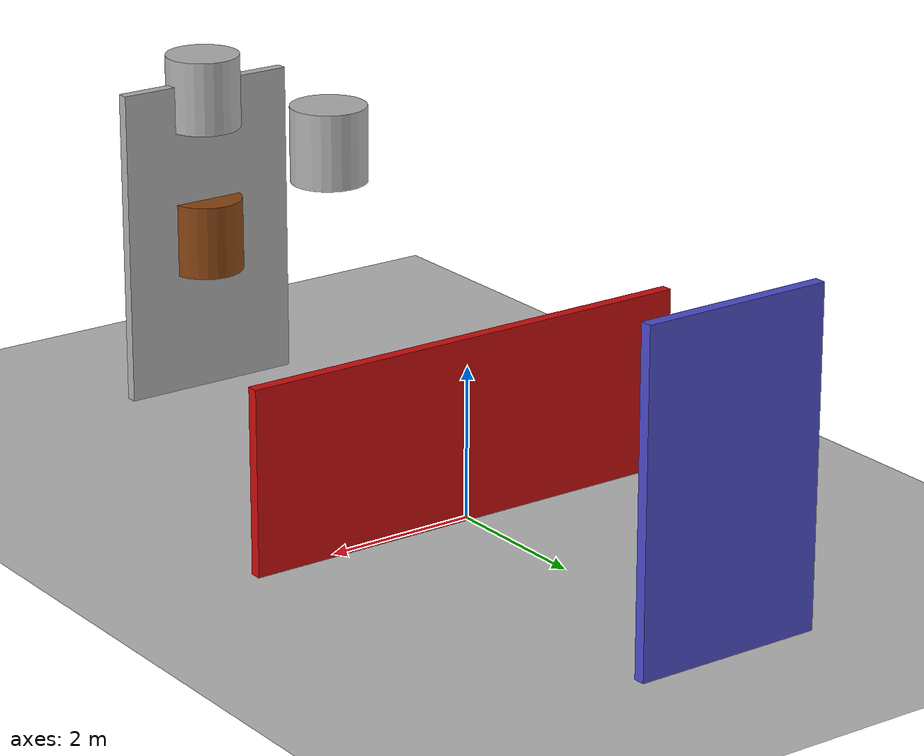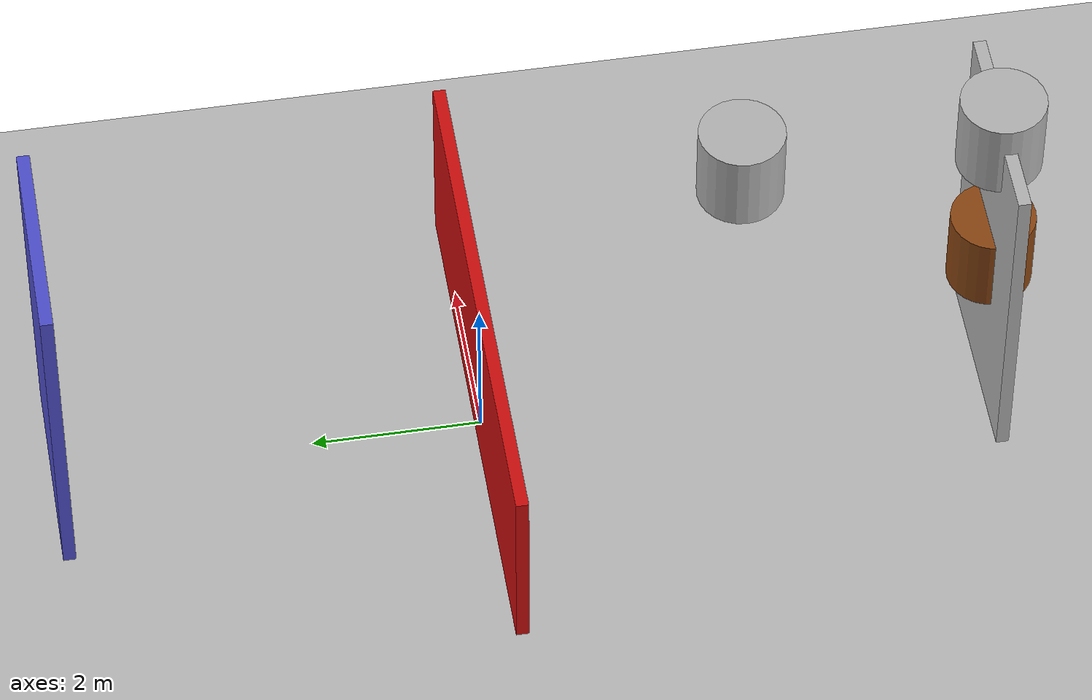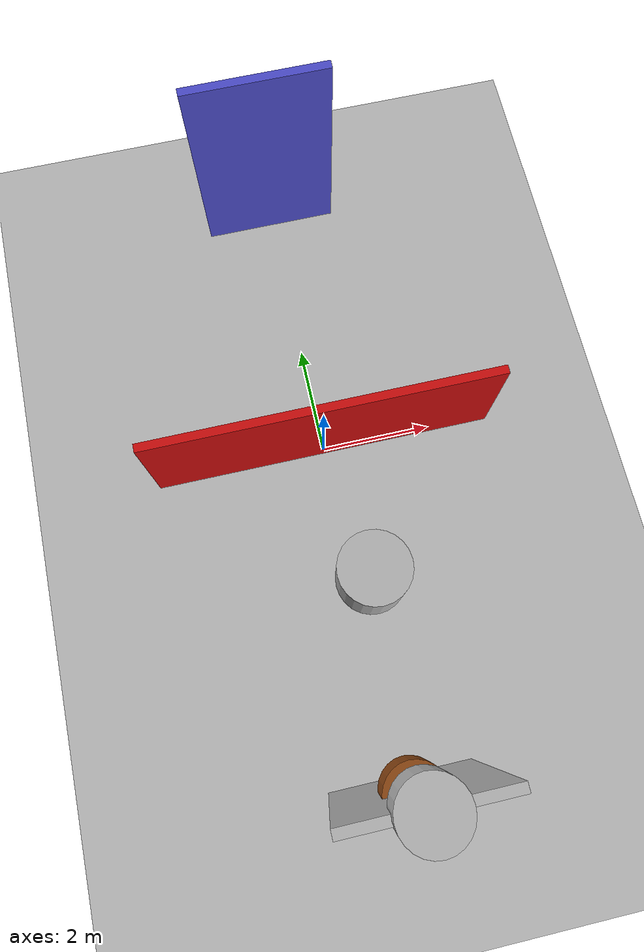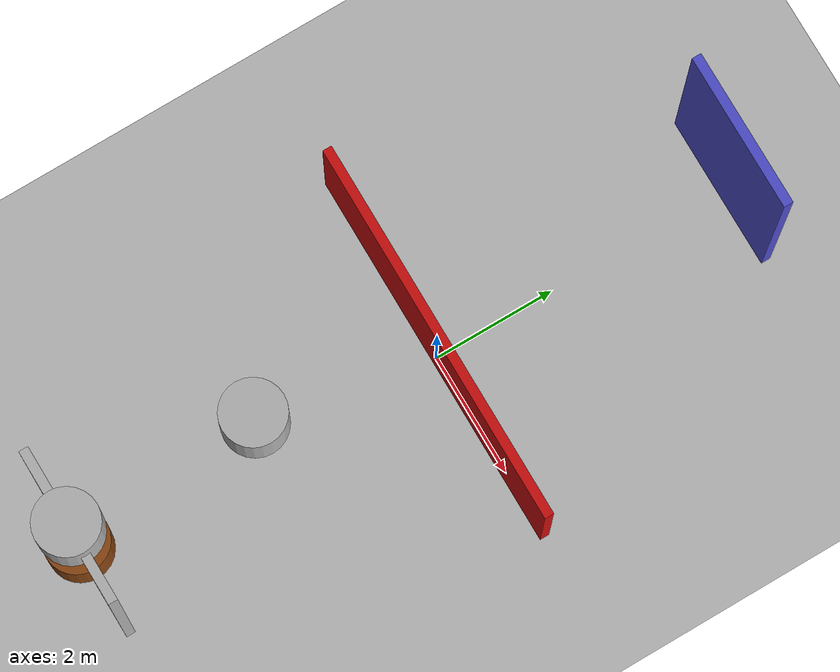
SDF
<sdf version="1.5">
 <world name="default">
  <include><uri>model://wall1</uri><pose>0 5 0 0 0 0</pose></include>
  <include><uri>model://wall2</uri></include>
  <include><uri>model://wall3</uri><pose>0 -6 0 0 0 0</pose></include>
  <include><uri>model://cylinder1</uri><pose>0 -6 0 0 0 0</pose></include>
  <include><uri>model://cylinder2</uri><pose>0 -6 2 0 0 0</pose></include>
  <include><uri>model://cylinder3</uri><pose>0 -3 2 0 0 0</pose></include>
  <include><uri>model://sun</uri></include>
  <light name="user_point_light_0" type="point">
   <pose>7.53258 -10.5204 1 0 -0 0</pose>
   <diffuse>0.5 0.5 0.5 1</diffuse>
   <specular>0.1 0.1 0.1 1</specular>
   <attenuation>
    <range>37</range>
    <constant>1</constant>
    <linear>0.05</linear>
    <quadratic>0.001</quadratic>
   </attenuation>
   <cast_shadows>0</cast_shadows>
   <direction>0 0 -1</direction>
  </light>
  <light name="user_point_light_0_clone" type="point">
   <pose>-13.5592 -18.4336 10 0 -0 0</pose>
   <diffuse>0.498039 0.498039 0.498039 1</diffuse>
   <specular>0 0 0 1</specular>
   <direction>0 0 -1</direction>
   <attenuation>
    <range>37</range>
    <constant>1</constant>
    <linear>0.05</linear>
    <quadratic>0.001</quadratic>
   </attenuation>
   <cast_shadows>0</cast_shadows>
  </light>
  <light name="user_point_light_1" type="point">
   <pose>-11.0322 15.4092 1 0 -0 0</pose>
   <diffuse>0.5 0.5 0.5 1</diffuse>
   <specular>0.1 0.1 0.1 1</specular>
   <attenuation>
    <range>20</range>
    <constant>0.5</constant>
    <linear>0.01</linear>
    <quadratic>0.001</quadratic>
   </attenuation>
   <cast_shadows>0</cast_shadows>
   <direction>0 0 -1</direction>
  </light>
  <light name="user_point_light_2" type="point">
   <pose>7.67436 15.2643 1 0 -0 0</pose>
   <diffuse>0.5 0.5 0.5 1</diffuse>
   <specular>0.1 0.1 0.1 1</specular>
   <attenuation>
    <range>20</range>
    <constant>0.5</constant>
    <linear>0.01</linear>
    <quadratic>0.001</quadratic>
   </attenuation>
   <cast_shadows>0</cast_shadows>
   <direction>0 0 -1</direction>
  </light>
  <light name="user_point_light_3" type="point">
   <pose>-13.7195 0.042174 1 0 -0 0</pose>
   <diffuse>0.5 0.5 0.5 1</diffuse>
   <specular>0.1 0.1 0.1 1</specular>
   <attenuation>
    <range>20</range>
    <constant>0.5</constant>
    <linear>0.01</linear>
    <quadratic>0.001</quadratic>
   </attenuation>
   <cast_shadows>0</cast_shadows>
   <direction>0 0 -1</direction>
  </light>
  <light name="user_point_light_4" type="point">
   <pose>12.95 2.24523 1 0 -0 0</pose>
   <diffuse>0.5 0.5 0.5 1</diffuse>
   <specular>0.1 0.1 0.1 1</specular>
   <attenuation>
    <range>20</range>
    <constant>0.5</constant>
    <linear>0.01</linear>
    <quadratic>0.001</quadratic>
   </attenuation>
   <cast_shadows>0</cast_shadows>
   <direction>0 0 -1</direction>
  </light>
  <include><uri>model://grass_plane</uri></include>
  <scene>
   <shadows>0</shadows>
   <ambient>0.4 0.4 0.4 1.0</ambient>
   <background>0.7 0.7 0.7 1</background>
   <sky><clouds><speed>12</speed></clouds></sky>
  </scene>
  <plugin name="ros_interface_plugin" filename="librotors_gazebo_ros_interface_plugin.so"/>
  <physics name="default_physics" default="0" type="ode">
   <gravity>0 0 -9.8066</gravity>
   <ode>
    <solver>
     <type>quick</type>
     <iters>10</iters>
     <sor>1.3</sor>
     <use_dynamic_moi_rescaling>0</use_dynamic_moi_rescaling>
    </solver>
    <constraints>
     <cfm>0</cfm>
     <erp>0.2</erp>
     <contact_max_correcting_vel>100</contact_max_correcting_vel>
     <contact_surface_layer>0.001</contact_surface_layer>
    </constraints>
   </ode>
   <max_step_size>0.004</max_step_size>
   <real_time_factor>1</real_time_factor>
   <real_time_update_rate>250</real_time_update_rate>
   <magnetic_field>6.0e-6 2.3e-5 -4.2e-5</magnetic_field>
  </physics>
 </world>
</sdf>

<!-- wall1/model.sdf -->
<sdf version='1.6'>
  <model name='wall1'>
    <link name='pared1'>
      <pose frame=''>0 0 2.133 0 0 0</pose>
      <inertial>
        <mass>10000</mass>
        <inertia>
          <ixx>99999999999</ixx>
          <ixy>0</ixy>
          <ixz>0</ixz>
          <iyy>99999999999</iyy>
          <iyz>0</iyz>
          <izz>99999999999</izz>
        </inertia>
        <pose frame=''>0 0 0 0 -0 0</pose>
      </inertial>
      <self_collide>0</self_collide>
      <kinematic>0</kinematic>
      <gravity>1</gravity>
      <visual name='visual'>
        <geometry>
          <box>
            <size>2.5 0.150783 4.266</size>
          </box>
        </geometry>
        <material>
          <!-- Blue -->
          <ambient>0 0 1 1</ambient>
          <diffuse>0.3 0.3 0.8 1</diffuse>
          <specular>0.01 0.1 0.01 1</specular>
          <emissive>0 0 0 1</emissive>
          <shader type='vertex'>
            <normal_map>__default__</normal_map>
          </shader>
        </material>
        <pose frame=''>0 0 0 0 -0 0</pose>
        <transparency>0</transparency>
        <cast_shadows>1</cast_shadows>
      </visual>
      <collision name='collision'>
        <laser_retro>0</laser_retro>
        <max_contacts>10</max_contacts>
        <pose frame=''>0 0 0 0 -0 0</pose>
        <geometry>
          <box>
            <size>2.5 0.150783 4.266</size>
          </box>
        </geometry>
        <surface>
          <friction>
            <ode>
              <mu>100</mu>
              <mu2>100</mu2>
              <fdir1>0 0 0</fdir1>
              <slip1>0</slip1>
              <slip2>0</slip2>
            </ode>
            <torsional>
              <coefficient>1</coefficient>
              <patch_radius>0</patch_radius>
              <surface_radius>0</surface_radius>
              <use_patch_radius>1</use_patch_radius>
              <ode>
                <slip>0</slip>
              </ode>
            </torsional>
          </friction>
          <bounce>
            <restitution_coefficient>0</restitution_coefficient>
            <threshold>1e+06</threshold>
          </bounce>
          <contact>
            <collide_without_contact>0</collide_without_contact>
            <collide_without_contact_bitmask>1</collide_without_contact_bitmask>
            <collide_bitmask>1</collide_bitmask>
            <ode>
              <soft_cfm>0</soft_cfm>
              <soft_erp>0.2</soft_erp>
              <kp>1e+13</kp>
              <kd>1</kd>
              <max_vel>0.01</max_vel>
              <min_depth>0</min_depth>
            </ode>
            <bullet>
              <split_impulse>1</split_impulse>
              <split_impulse_penetration_threshold>-0.01</split_impulse_penetration_threshold>
              <soft_cfm>0</soft_cfm>
              <soft_erp>0.2</soft_erp>
              <kp>1e+13</kp>
              <kd>1</kd>
            </bullet>
          </contact>
        </surface>
      </collision>
    </link>
    <static>0</static>
    <allow_auto_disable>1</allow_auto_disable>
    <plugin name="wall1plugin" filename="libwall1plugin.so"/>
  </model>
</sdf>

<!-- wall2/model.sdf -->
<sdf version='1.6'>
  <model name='wall2'>
    <link name='pared1'>
      <gravity>0</gravity>
      <pose frame=''>0 0 1.2 0 0 0</pose>
      <inertial>
        <mass>10000</mass>
        <inertia>
          <ixx>99999999999</ixx>
          <ixy>0</ixy>
          <ixz>0</ixz>
          <iyy>99999999999</iyy>
          <iyz>0</iyz>
          <izz>99999999999</izz>
        </inertia>
        <pose frame=''>0 0 0 0 -0 0</pose>
      </inertial>
      <self_collide>0</self_collide>
      <kinematic>0</kinematic>
      <gravity>1</gravity>
      <visual name='visual'>
        <geometry>
          <box>
            <size>6.266 0.150783 2.4</size>
          </box>
        </geometry>
        <material>
          <!-- Red -->
          <ambient>0.5 0.1 0.1 1</ambient>
          <diffuse>0.8 0.05 0.05 1</diffuse>
          <specular>0.01 0.1 0.01 1</specular>
          <emissive>0.1 0 0.1 1</emissive>
          <shader type='vertex'>
            <normal_map>__default__</normal_map>
          </shader>
        </material>
        <pose frame=''>0 0 0 0 -0 0</pose>
        <transparency>0</transparency>
        <cast_shadows>1</cast_shadows>
      </visual>
      <collision name='collision'>
        <laser_retro>0</laser_retro>
        <max_contacts>10</max_contacts>
        <pose frame=''>0 0 0 0 -0 0</pose>
        <geometry>
          <box>
            <size>6.266 0.150783 2.4</size>
          </box>
        </geometry>
        <surface>
          <friction>
            <ode>
              <mu>100</mu>
              <mu2>100</mu2>
              <fdir1>0 0 0</fdir1>
              <slip1>0</slip1>
              <slip2>0</slip2>
            </ode>
            <torsional>
              <coefficient>1</coefficient>
              <patch_radius>0</patch_radius>
              <surface_radius>0</surface_radius>
              <use_patch_radius>1</use_patch_radius>
              <ode>
                <slip>0</slip>
              </ode>
            </torsional>
          </friction>
          <bounce>
            <restitution_coefficient>0</restitution_coefficient>
            <threshold>1e+06</threshold>
          </bounce>
          <contact>
            <collide_without_contact>0</collide_without_contact>
            <collide_without_contact_bitmask>1</collide_without_contact_bitmask>
            <collide_bitmask>1</collide_bitmask>
            <ode>
              <soft_cfm>0</soft_cfm>
              <soft_erp>0.2</soft_erp>
              <kp>1e+13</kp>
              <kd>1</kd>
              <max_vel>0.01</max_vel>
              <min_depth>0</min_depth>
            </ode>
            <bullet>
              <split_impulse>1</split_impulse>
              <split_impulse_penetration_threshold>-0.01</split_impulse_penetration_threshold>
              <soft_cfm>0</soft_cfm>
              <soft_erp>0.2</soft_erp>
              <kp>1e+13</kp>
              <kd>1</kd>
            </bullet>
          </contact>
        </surface>
      </collision>
    </link>
    <static>0</static>
    <allow_auto_disable>1</allow_auto_disable>
    <plugin name="wall2plugin" filename="libwall2plugin.so"/>
  </model>
</sdf>

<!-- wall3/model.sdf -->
<sdf version='1.6'>
  <model name='wall3'>
    <link name='pared1'>
      <pose frame=''>0 0 2.133 0 0 0</pose>
      <inertial>
        <mass>10000</mass>
        <inertia>
          <ixx>99999999999</ixx>
          <ixy>0</ixy>
          <ixz>0</ixz>
          <iyy>99999999999</iyy>
          <iyz>0</iyz>
          <izz>99999999999</izz>
        </inertia>
        <pose frame=''>0 0 0 0 -0 0</pose>
      </inertial>
      <self_collide>0</self_collide>
      <kinematic>0</kinematic>
      <gravity>1</gravity>
      <visual name='visual'>
        <geometry>
          <box>
            <size>2.5 0.150783 4.266</size>
          </box>
        </geometry>
        <material>
          <!-- Cyan -->
          <ambient>0.698039 0.698039 0.698039 1</ambient>
          <diffuse>0.698039 0.698039 0.698039 1</diffuse>
          <specular>0.898039 0.898039 0.898039 1</specular>
          <emissive>0 0.945098 0.980392 1</emissive>
          <shader type='vertex'>
            <normal_map>__default__</normal_map>
          </shader>
        </material>
        <pose frame=''>0 0 0 0 -0 0</pose>
        <transparency>0</transparency>
        <cast_shadows>1</cast_shadows>
      </visual>
      <collision name='collision'>
        <laser_retro>0</laser_retro>
        <max_contacts>10</max_contacts>
        <pose frame=''>0 0 0 0 -0 0</pose>
        <geometry>
          <box>
            <size>2.5 0.150783 4.266</size>
          </box>
        </geometry>
        <surface>
          <friction>
            <ode>
              <mu>100</mu>
              <mu2>100</mu2>
              <fdir1>0 0 0</fdir1>
              <slip1>0</slip1>
              <slip2>0</slip2>
            </ode>
            <torsional>
              <coefficient>1</coefficient>
              <patch_radius>0</patch_radius>
              <surface_radius>0</surface_radius>
              <use_patch_radius>1</use_patch_radius>
              <ode>
                <slip>0</slip>
              </ode>
            </torsional>
          </friction>
          <bounce>
            <restitution_coefficient>0</restitution_coefficient>
            <threshold>1e+06</threshold>
          </bounce>
          <contact>
            <collide_without_contact>0</collide_without_contact>
            <collide_without_contact_bitmask>1</collide_without_contact_bitmask>
            <collide_bitmask>1</collide_bitmask>
            <ode>
              <soft_cfm>0</soft_cfm>
              <soft_erp>0.2</soft_erp>
              <kp>1e+13</kp>
              <kd>1</kd>
              <max_vel>0.01</max_vel>
              <min_depth>0</min_depth>
            </ode>
            <bullet>
              <split_impulse>1</split_impulse>
              <split_impulse_penetration_threshold>-0.01</split_impulse_penetration_threshold>
              <soft_cfm>0</soft_cfm>
              <soft_erp>0.2</soft_erp>
              <kp>1e+13</kp>
              <kd>1</kd>
            </bullet>
          </contact>
        </surface>
      </collision>
    </link>
    <static>0</static>
    <allow_auto_disable>1</allow_auto_disable>
    <plugin name="wall3plugin" filename="libwall3plugin.so"/>
  </model>
</sdf>

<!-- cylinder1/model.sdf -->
<sdf version='1.6'>
  <model name='cylinder1'>
    <link name='pared1'>
      <pose frame=''>0 0 2.133 0 0 0</pose>
      <inertial>
        <mass>10000</mass>
        <inertia>
          <ixx>99999999999</ixx>
          <ixy>0</ixy>
          <ixz>0</ixz>
          <iyy>99999999999</iyy>
          <iyz>0</iyz>
          <izz>99999999999</izz>
        </inertia>
        <pose frame=''>0 0 0 0 -0 0</pose>
      </inertial>
      <self_collide>0</self_collide>
      <kinematic>0</kinematic>
      <gravity>1</gravity>
      <visual name='visual'>
        <geometry>
          <cylinder>
              <radius>0.5</radius>
              <length>1</length>
          </cylinder>
        </geometry>
        <material>
          <!-- Brown -->
          <ambient>0.25 0.15 0.05 1</ambient>
          <diffuse>0.54 0.27 0.07 1</diffuse>
          <specular>0.63 0.32 0.18 1</specular>
          <emissive>0 0 0 1</emissive>
          <shader type='vertex'>
            <normal_map>__default__</normal_map>
          </shader>
        </material>
        <pose frame=''>0 0 0 0 -0 0</pose>
        <transparency>0</transparency>
        <cast_shadows>1</cast_shadows>
      </visual>
      <collision name='collision'>
        <laser_retro>0</laser_retro>
        <max_contacts>10</max_contacts>
        <pose frame=''>0 0 0 0 -0 0</pose>
        <geometry>
          <cylinder>
              <radius>0.5</radius>
              <length>1</length>
            </cylinder>
        </geometry>
        <surface>
          <friction>
            <ode>
              <mu>100</mu>
              <mu2>100</mu2>
              <fdir1>0 0 0</fdir1>
              <slip1>0</slip1>
              <slip2>0</slip2>
            </ode>
            <torsional>
              <coefficient>1</coefficient>
              <patch_radius>0</patch_radius>
              <surface_radius>0</surface_radius>
              <use_patch_radius>1</use_patch_radius>
              <ode>
                <slip>0</slip>
              </ode>
            </torsional>
          </friction>
          <bounce>
            <restitution_coefficient>0</restitution_coefficient>
            <threshold>1e+06</threshold>
          </bounce>
          <contact>
            <collide_without_contact>0</collide_without_contact>
            <collide_without_contact_bitmask>1</collide_without_contact_bitmask>
            <collide_bitmask>1</collide_bitmask>
            <ode>
              <soft_cfm>0</soft_cfm>
              <soft_erp>0.2</soft_erp>
              <kp>1e+13</kp>
              <kd>1</kd>
              <max_vel>0.01</max_vel>
              <min_depth>0</min_depth>
            </ode>
            <bullet>
              <split_impulse>1</split_impulse>
              <split_impulse_penetration_threshold>-0.01</split_impulse_penetration_threshold>
              <soft_cfm>0</soft_cfm>
              <soft_erp>0.2</soft_erp>
              <kp>1e+13</kp>
              <kd>1</kd>
            </bullet>
          </contact>
        </surface>
      </collision>
    </link>
    <static>0</static>
    <allow_auto_disable>1</allow_auto_disable>
    <plugin name="cylinder1plugin" filename="libwall4plugin.so"/>
  </model>
</sdf>

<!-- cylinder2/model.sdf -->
<sdf version='1.6'>
  <model name='cylinder2'>
    <link name='pared1'>
      <pose frame=''>0 0 2.133 0 0 0</pose>
      <inertial>
        <mass>10000</mass>
        <inertia>
          <ixx>99999999999</ixx>
          <ixy>0</ixy>
          <ixz>0</ixz>
          <iyy>99999999999</iyy>
          <iyz>0</iyz>
          <izz>99999999999</izz>
        </inertia>
        <pose frame=''>0 0 0 0 -0 0</pose>
      </inertial>
      <self_collide>0</self_collide>
      <kinematic>0</kinematic>
      <gravity>1</gravity>
      <visual name='visual'>
        <geometry>
          <cylinder>
              <radius>0.5</radius>
              <length>1</length>
          </cylinder>
        </geometry>
        <material>
          <!-- Grey -->
          <ambient>0.4 0.6 0.3 1</ambient>
          <diffuse>0.698039 0.698039 0.698039 1</diffuse>
          <specular>0.898039 0.898039 0.898039 1</specular>
          <emissive>0 0 0 1</emissive>
          <shader type='vertex'>
            <normal_map>__default__</normal_map>
          </shader>
        </material>
        <pose frame=''>0 0 0 0 -0 0</pose>
        <transparency>0</transparency>
        <cast_shadows>1</cast_shadows>
      </visual>
      <collision name='collision'>
        <laser_retro>0</laser_retro>
        <max_contacts>10</max_contacts>
        <pose frame=''>0 0 0 0 -0 0</pose>
        <geometry>
          <cylinder>
              <radius>0.5</radius>
              <length>1</length>
            </cylinder>
        </geometry>
        <surface>
          <friction>
            <ode>
              <mu>100</mu>
              <mu2>100</mu2>
              <fdir1>0 0 0</fdir1>
              <slip1>0</slip1>
              <slip2>0</slip2>
            </ode>
            <torsional>
              <coefficient>1</coefficient>
              <patch_radius>0</patch_radius>
              <surface_radius>0</surface_radius>
              <use_patch_radius>1</use_patch_radius>
              <ode>
                <slip>0</slip>
              </ode>
            </torsional>
          </friction>
          <bounce>
            <restitution_coefficient>0</restitution_coefficient>
            <threshold>1e+06</threshold>
          </bounce>
          <contact>
            <collide_without_contact>0</collide_without_contact>
            <collide_without_contact_bitmask>1</collide_without_contact_bitmask>
            <collide_bitmask>1</collide_bitmask>
            <ode>
              <soft_cfm>0</soft_cfm>
              <soft_erp>0.2</soft_erp>
              <kp>1e+13</kp>
              <kd>1</kd>
              <max_vel>0.01</max_vel>
              <min_depth>0</min_depth>
            </ode>
            <bullet>
              <split_impulse>1</split_impulse>
              <split_impulse_penetration_threshold>-0.01</split_impulse_penetration_threshold>
              <soft_cfm>0</soft_cfm>
              <soft_erp>0.2</soft_erp>
              <kp>1e+13</kp>
              <kd>1</kd>
            </bullet>
          </contact>
        </surface>
      </collision>
    </link>
    <static>0</static>
    <allow_auto_disable>1</allow_auto_disable>
    <plugin name="cylinder2plugin" filename="libwall4plugin.so"/>
  </model>
</sdf>

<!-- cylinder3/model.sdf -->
<sdf version='1.6'>
  <model name='cylinder3'>
    <link name='pared1'>
      <pose frame=''>0 0 2.133 0 0 0</pose>
      <inertial>
        <mass>10000</mass>
        <inertia>
          <ixx>99999999999</ixx>
          <ixy>0</ixy>
          <ixz>0</ixz>
          <iyy>99999999999</iyy>
          <iyz>0</iyz>
          <izz>99999999999</izz>
        </inertia>
        <pose frame=''>0 0 0 0 -0 0</pose>
      </inertial>
      <self_collide>0</self_collide>
      <kinematic>0</kinematic>
      <gravity>1</gravity>
      <visual name='visual'>
        <geometry>
          <cylinder>
              <radius>0.5</radius>
              <length>1</length>
          </cylinder>
        </geometry>
        <material>
          <!-- Yellow -->
          <ambient>0.698039 0.698039 0.698039 1</ambient>
          <diffuse>0.698039 0.698039 0.698039 1</diffuse>
          <specular>0.898039 0.898039 0.898039 1</specular>
          <emissive>1 1 0 1</emissive>
          <shader type='vertex'>
            <normal_map>__default__</normal_map>
          </shader>
        </material>
        <pose frame=''>0 0 0 0 -0 0</pose>
        <transparency>0</transparency>
        <cast_shadows>1</cast_shadows>
      </visual>
      <collision name='collision'>
        <laser_retro>0</laser_retro>
        <max_contacts>10</max_contacts>
        <pose frame=''>0 0 0 0 -0 0</pose>
        <geometry>
          <cylinder>
              <radius>0.5</radius>
              <length>1</length>
            </cylinder>
        </geometry>
        <surface>
          <friction>
            <ode>
              <mu>100</mu>
              <mu2>100</mu2>
              <fdir1>0 0 0</fdir1>
              <slip1>0</slip1>
              <slip2>0</slip2>
            </ode>
            <torsional>
              <coefficient>1</coefficient>
              <patch_radius>0</patch_radius>
              <surface_radius>0</surface_radius>
              <use_patch_radius>1</use_patch_radius>
              <ode>
                <slip>0</slip>
              </ode>
            </torsional>
          </friction>
          <bounce>
            <restitution_coefficient>0</restitution_coefficient>
            <threshold>1e+06</threshold>
          </bounce>
          <contact>
            <collide_without_contact>0</collide_without_contact>
            <collide_without_contact_bitmask>1</collide_without_contact_bitmask>
            <collide_bitmask>1</collide_bitmask>
            <ode>
              <soft_cfm>0</soft_cfm>
              <soft_erp>0.2</soft_erp>
              <kp>1e+13</kp>
              <kd>1</kd>
              <max_vel>0.01</max_vel>
              <min_depth>0</min_depth>
            </ode>
            <bullet>
              <split_impulse>1</split_impulse>
              <split_impulse_penetration_threshold>-0.01</split_impulse_penetration_threshold>
              <soft_cfm>0</soft_cfm>
              <soft_erp>0.2</soft_erp>
              <kp>1e+13</kp>
              <kd>1</kd>
            </bullet>
          </contact>
        </surface>
      </collision>
    </link>
    <static>0</static>
    <allow_auto_disable>1</allow_auto_disable>
    <plugin name="cylinder3plugin" filename="libwall2plugin.so"/>
  </model>
</sdf>

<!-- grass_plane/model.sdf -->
<sdf version="1.4">
  <model name="grass_plane">
    <static>true</static>
    <link name="link">
      <collision name="collision">
        <geometry>
          <plane>
            <normal>0 0 1</normal>
            <size>750 750</size>
          </plane>
        </geometry>
        <surface>
          <friction>
            <ode>
              <mu>0.5</mu>
              <mu2>.5</mu2>
            </ode>
          </friction>
        </surface>
      </collision>

      <visual name="visual_0">
        <pose>2 -5 0 0 0 0</pose>

        <cast_shadows>false</cast_shadows>
        <geometry>
          <mesh>
            <uri>model://grass_plane/meshes/grass_plane.dae</uri>
            <scale>3 3 1</scale>
          </mesh>
        </geometry>
      </visual>
    </link>
  </model>
</sdf>
